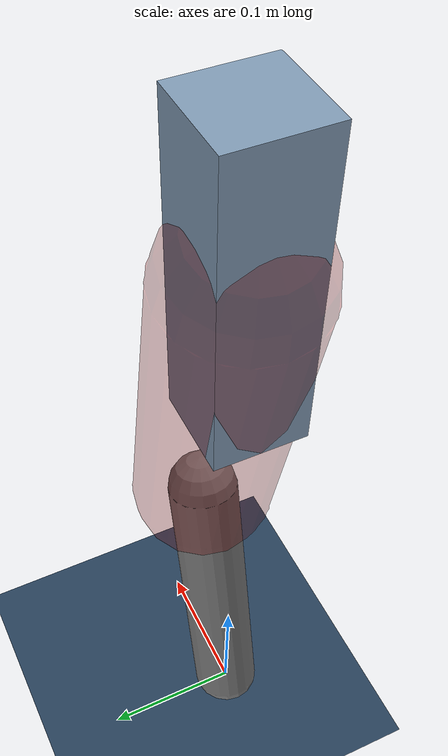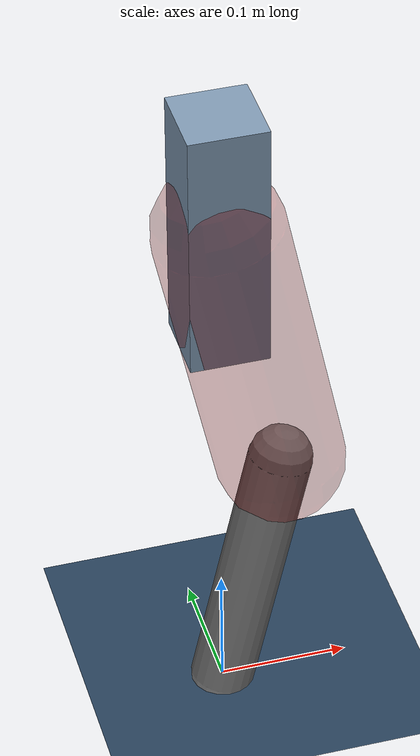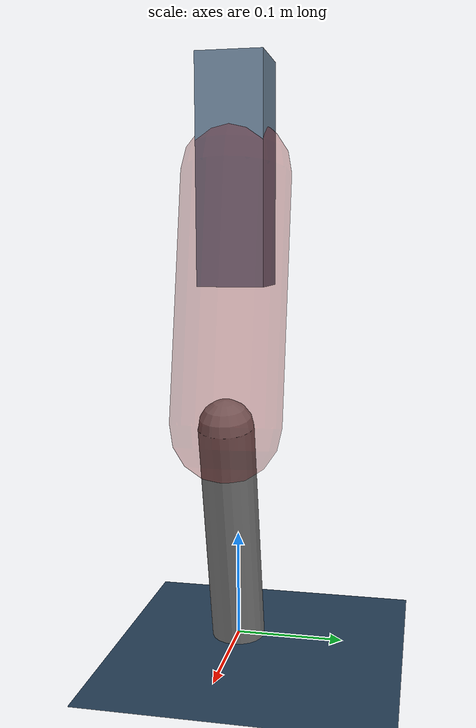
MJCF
<mujoco model="Hopper2D">
	<compiler inertiafromgeom="true" angle="radian" />
	<option timestep="0.001" integrator="implicit" cone="elliptic" solver="Newton" tolerance="1e-10" />

	<default>
		<geom contype="1" conaffinity="1" condim="3" friction="2 0.005 0.0001" solref="0.005 1" />
		<joint limited="true" damping="0.1" />
	</default>

	<asset>
		<texture name="skybox" type="skybox" builtin="gradient" rgb1=".4 .6 .8" rgb2="0 0 0" width="800" height="800" />
		<texture name="grid" type="2d" builtin="checker" rgb1=".1 .2 .3" rgb2=".2 .3 .4" width="300" height="300" mark="edge" markrgb=".2 .3 .4" />
		<material name="ground" texture="grid" texrepeat="1 1" texuniform="true" reflectance="0.1" />
		<material name="leg" rgba="0.5 0.6 0.7 1" />
	</asset>

	<worldbody>

		<geom name="floor" type="plane" size="5 5 0.25" material="ground" />

		<light directional="false" diffuse="0.8 0.8 0.8" specular="0.3 0.3 0.3" pos="0 0 2" dir="0 0 -1" />
		<light mode="targetbodycom" target="base" directional="false" diffuse="0.8 0.8 0.8" specular="0.3 0.3 0.3" pos="0 0 2" dir="0 0 -1" />

		<camera name="fixed" pos="0 -2 1" xyaxes="1 0 0 0 0 1" />
		<camera name="tracking" mode="trackcom" pos="0 -3 1" />

		<body name="root" pos="0 0 0.43535865076027674">
			<joint name="slide_x" type="slide" axis="1 0 0" range="-100 100" />
			<joint name="slide_z" type="slide" axis="0 0 1" range="0 10" />

			<body name="base" pos="0 0 0">
				<geom name="torso" type="box" size="0.03 0.03 0.1" mass="3.08" material="leg" />

				<body name="link1" pos="0 0 0" euler="0 1.3625788622754278 0">
					<joint type="hinge" axis="0 -1 0" pos="0 0 0" name="hinge1" limited="true" range="-3.14 3.14" stiffness="0" damping="0.1" />
					<geom name="thigh" type="capsule" fromto="0 0 0 0.22694999039665006 0 0" size="0.05" rgba="0.5 0 0 0.3" mass="0.7972749759916251" />

					<body name="link2" pos="0.22694999039665006 0 0" euler="0 0.4247047825051734 0">
						<joint type="hinge" axis="0 -1 0" pos="0 0 0" name="hinge2" limited="true" range="-3.14 3.14" stiffness="0" damping="0.1" />
						<geom name="shank" type="capsule" fromto="0 0 0 0.2184086603636267 0 0" size="0.025" mass="0.41632692829090134" />

					</body>
				</body>
			</body>
		</body>
	</worldbody>

	<actuator>
		<motor name="torque1" joint="hinge1" ctrlrange="-128.48627391432046 128.48627391432046" ctrllimited="true" gear="1" />
		<motor name="torque2" joint="hinge2" ctrlrange="-82.69837154341263 82.69837154341263" ctrllimited="true" gear="1" />
	</actuator>
</mujoco>
